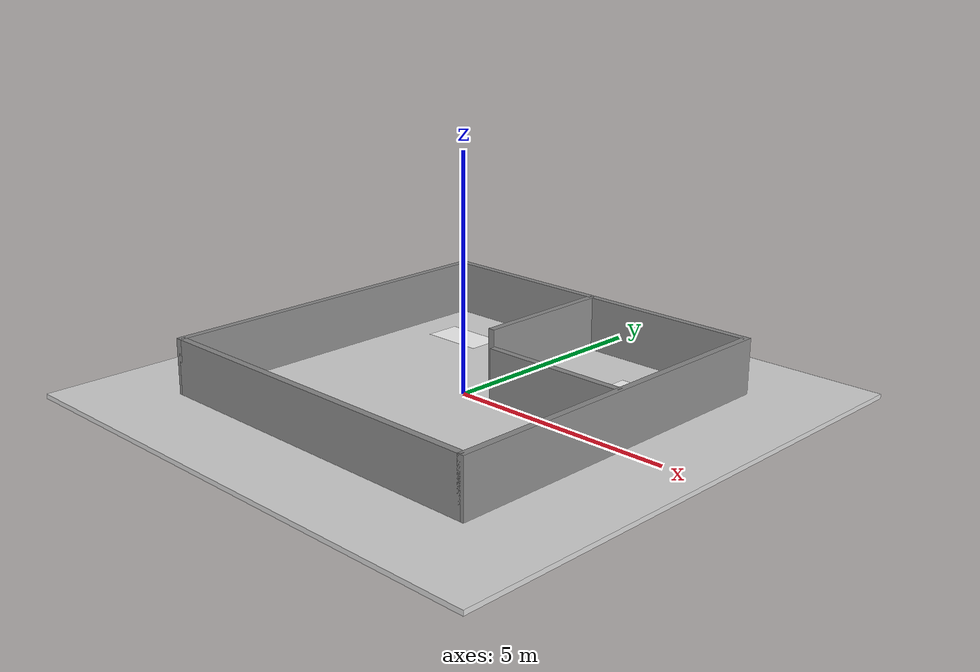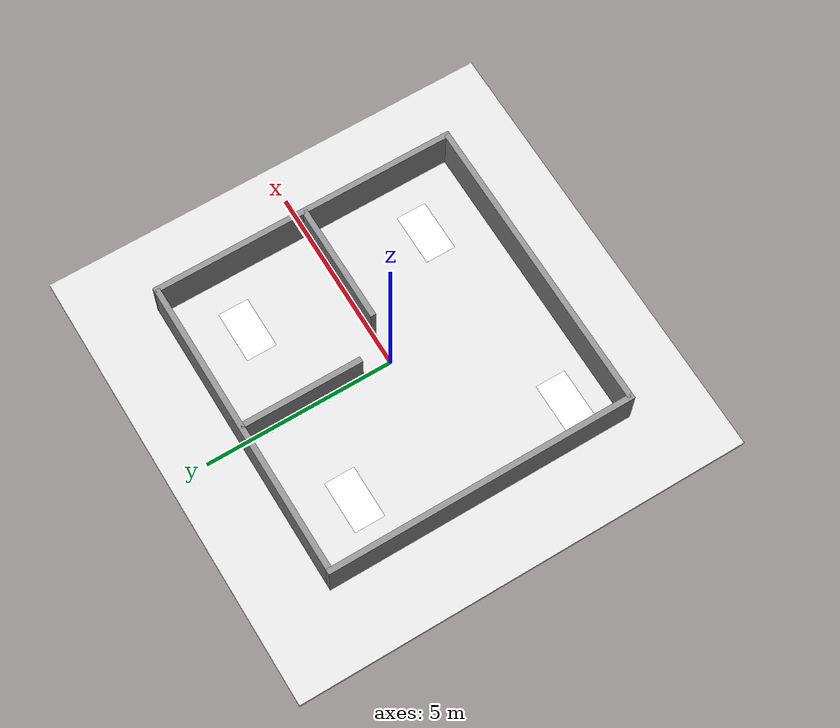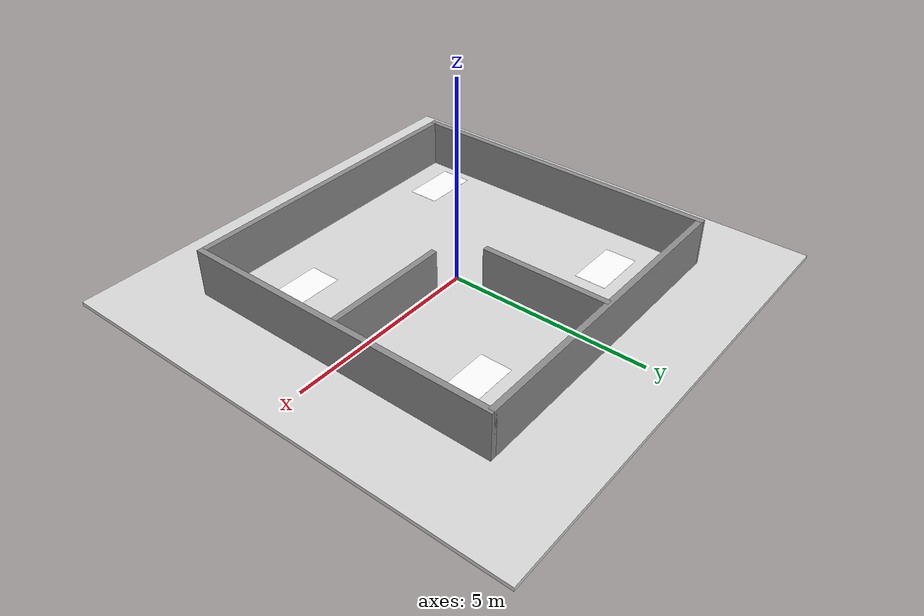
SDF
<?xml version='1.0' encoding='utf-8'?>
<sdf version="1.8">
  <world name="final_places">
    <physics name="physics" type="ignored">
      <max_step_size>0.001</max_step_size>
      <real_time_factor>1</real_time_factor>
    </physics>
    <plugin filename="gz-sim-physics-system" name="gz::sim::systems::Physics" />
    <plugin filename="gz-sim-user-commands-system" name="gz::sim::systems::UserCommands" />
    <plugin filename="gz-sim-scene-broadcaster-system" name="gz::sim::systems::SceneBroadcaster" />
    <plugin filename="gz-sim-sensors-system" name="gz::sim::systems::Sensors">
      <render_engine>ogre2</render_engine>
    </plugin>
    <plugin filename="gz-sim-imu-system" name="gz::sim::systems::Imu" />
    <scene>
      <ambient>0.6 0.6 0.6 1</ambient>
      <background>0.8 0.85 0.9 1</background>
      <grid>false</grid>
    </scene>
    <light name="sun" type="directional">
      <pose>0 0 10 0 0 0</pose>
      <direction>-0.3 0.2 -1</direction>
      <diffuse>0.8 0.8 0.8 1</diffuse>
      <cast_shadows>false</cast_shadows>
    </light>
    <model name="floor">
      <static>true</static>
      <pose>0.000000 0.000000 -0.050000 0 0 0.000000</pose>
      <link name="body">
        <collision name="collision">
          <geometry>
            <box>
              <size>12 12 0.1</size>
            </box>
          </geometry>
        </collision>
        <visual name="visual">
          <geometry>
            <box>
              <size>12 12 0.1</size>
            </box>
          </geometry>
          <cast_shadows>false</cast_shadows>
          <material>
            <ambient>0.85 0.85 0.85 1</ambient>
            <diffuse>0.85 0.85 0.85 1</diffuse>
          </material>
        </visual>
      </link>
    </model>
    <model name="wall_0">
      <static>true</static>
      <pose>-4.000000 0.000000 0.600000 0 0 0.000000</pose>
      <link name="body">
        <collision name="collision">
          <geometry>
            <box>
              <size>0.15 8.15 1.2</size>
            </box>
          </geometry>
        </collision>
        <visual name="visual">
          <geometry>
            <box>
              <size>0.15 8.15 1.2</size>
            </box>
          </geometry>
          <cast_shadows>false</cast_shadows>
          <material>
            <ambient>0.55 0.55 0.55 1</ambient>
            <diffuse>0.55 0.55 0.55 1</diffuse>
          </material>
        </visual>
      </link>
    </model>
    <model name="wall_1">
      <static>true</static>
      <pose>4.000000 0.000000 0.600000 0 0 0.000000</pose>
      <link name="body">
        <collision name="collision">
          <geometry>
            <box>
              <size>0.15 8.15 1.2</size>
            </box>
          </geometry>
        </collision>
        <visual name="visual">
          <geometry>
            <box>
              <size>0.15 8.15 1.2</size>
            </box>
          </geometry>
          <cast_shadows>false</cast_shadows>
          <material>
            <ambient>0.55 0.55 0.55 1</ambient>
            <diffuse>0.55 0.55 0.55 1</diffuse>
          </material>
        </visual>
      </link>
    </model>
    <model name="wall_2">
      <static>true</static>
      <pose>0.000000 -4.000000 0.600000 0 0 0.000000</pose>
      <link name="body">
        <collision name="collision">
          <geometry>
            <box>
              <size>8 0.15 1.2</size>
            </box>
          </geometry>
        </collision>
        <visual name="visual">
          <geometry>
            <box>
              <size>8 0.15 1.2</size>
            </box>
          </geometry>
          <cast_shadows>false</cast_shadows>
          <material>
            <ambient>0.55 0.55 0.55 1</ambient>
            <diffuse>0.55 0.55 0.55 1</diffuse>
          </material>
        </visual>
      </link>
    </model>
    <model name="wall_3">
      <static>true</static>
      <pose>0.000000 4.000000 0.600000 0 0 0.000000</pose>
      <link name="body">
        <collision name="collision">
          <geometry>
            <box>
              <size>8 0.15 1.2</size>
            </box>
          </geometry>
        </collision>
        <visual name="visual">
          <geometry>
            <box>
              <size>8 0.15 1.2</size>
            </box>
          </geometry>
          <cast_shadows>false</cast_shadows>
          <material>
            <ambient>0.55 0.55 0.55 1</ambient>
            <diffuse>0.55 0.55 0.55 1</diffuse>
          </material>
        </visual>
      </link>
    </model>
    <model name="wall_4">
      <static>true</static>
      <pose>0.000000 2.400000 0.600000 0 0 0.000000</pose>
      <link name="body">
        <collision name="collision">
          <geometry>
            <box>
              <size>0.15 3.2 1.2</size>
            </box>
          </geometry>
        </collision>
        <visual name="visual">
          <geometry>
            <box>
              <size>0.15 3.2 1.2</size>
            </box>
          </geometry>
          <cast_shadows>false</cast_shadows>
          <material>
            <ambient>0.55 0.55 0.55 1</ambient>
            <diffuse>0.55 0.55 0.55 1</diffuse>
          </material>
        </visual>
      </link>
    </model>
    <model name="wall_5">
      <static>true</static>
      <pose>2.400000 0.000000 0.600000 0 0 0.000000</pose>
      <link name="body">
        <collision name="collision">
          <geometry>
            <box>
              <size>3.2 0.15 1.2</size>
            </box>
          </geometry>
        </collision>
        <visual name="visual">
          <geometry>
            <box>
              <size>3.2 0.15 1.2</size>
            </box>
          </geometry>
          <cast_shadows>false</cast_shadows>
          <material>
            <ambient>0.55 0.55 0.55 1</ambient>
            <diffuse>0.55 0.55 0.55 1</diffuse>
          </material>
        </visual>
      </link>
    </model>
    <include>
      <name>reception</name>
      <uri>model://final_place_reception</uri>
      <pose>-3.0 -3.0 0.008 0 0 0</pose>
    </include>
    <include>
      <name>laboratory</name>
      <uri>model://final_place_laboratory</uri>
      <pose>-2.5 2.5 0.008 0 0 0</pose>
    </include>
    <include>
      <name>meeting_room</name>
      <uri>model://final_place_meeting_room</uri>
      <pose>2.5 2.5 0.008 0 0 0</pose>
    </include>
    <include>
      <name>charging_station</name>
      <uri>model://final_place_charging_station</uri>
      <pose>2.5 -2.5 0.008 0 0 0</pose>
    </include>
  </world>
</sdf>

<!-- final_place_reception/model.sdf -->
<sdf version="1.8">
  <model name="final_place_reception">
    <static>true</static>
    <link name="label">
      <visual name="label">
        <cast_shadows>false</cast_shadows>
        <geometry>
          <plane>
            <normal>0 0 1</normal>
            <size>1.4 0.8</size>
          </plane>
        </geometry>
        <material>
          <ambient>1 1 1 1</ambient>
          <diffuse>1 1 1 1</diffuse>
          <pbr>
            <metal>
              <albedo_map>model://final_place_reception/materials/textures/reception.png</albedo_map>
              <metalness>0</metalness>
              <roughness>1</roughness>
            </metal>
          </pbr>
        </material>
      </visual>
    </link>
  </model>
</sdf>

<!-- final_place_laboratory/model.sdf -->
<sdf version="1.8">
  <model name="final_place_laboratory">
    <static>true</static>
    <link name="label">
      <visual name="label">
        <cast_shadows>false</cast_shadows>
        <geometry>
          <plane>
            <normal>0 0 1</normal>
            <size>1.4 0.8</size>
          </plane>
        </geometry>
        <material>
          <ambient>1 1 1 1</ambient>
          <diffuse>1 1 1 1</diffuse>
          <pbr>
            <metal>
              <albedo_map>model://final_place_laboratory/materials/textures/laboratory.png</albedo_map>
              <metalness>0</metalness>
              <roughness>1</roughness>
            </metal>
          </pbr>
        </material>
      </visual>
    </link>
  </model>
</sdf>

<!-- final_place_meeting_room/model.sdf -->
<sdf version="1.8">
  <model name="final_place_meeting_room">
    <static>true</static>
    <link name="label">
      <visual name="label">
        <cast_shadows>false</cast_shadows>
        <geometry>
          <plane>
            <normal>0 0 1</normal>
            <size>1.4 0.8</size>
          </plane>
        </geometry>
        <material>
          <ambient>1 1 1 1</ambient>
          <diffuse>1 1 1 1</diffuse>
          <pbr>
            <metal>
              <albedo_map>model://final_place_meeting_room/materials/textures/meeting_room.png</albedo_map>
              <metalness>0</metalness>
              <roughness>1</roughness>
            </metal>
          </pbr>
        </material>
      </visual>
    </link>
  </model>
</sdf>

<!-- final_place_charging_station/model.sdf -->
<sdf version="1.8">
  <model name="final_place_charging_station">
    <static>true</static>
    <link name="label">
      <visual name="label">
        <cast_shadows>false</cast_shadows>
        <geometry>
          <plane>
            <normal>0 0 1</normal>
            <size>1.4 0.8</size>
          </plane>
        </geometry>
        <material>
          <ambient>1 1 1 1</ambient>
          <diffuse>1 1 1 1</diffuse>
          <pbr>
            <metal>
              <albedo_map>model://final_place_charging_station/materials/textures/charging_station.png</albedo_map>
              <metalness>0</metalness>
              <roughness>1</roughness>
            </metal>
          </pbr>
        </material>
      </visual>
    </link>
  </model>
</sdf>
